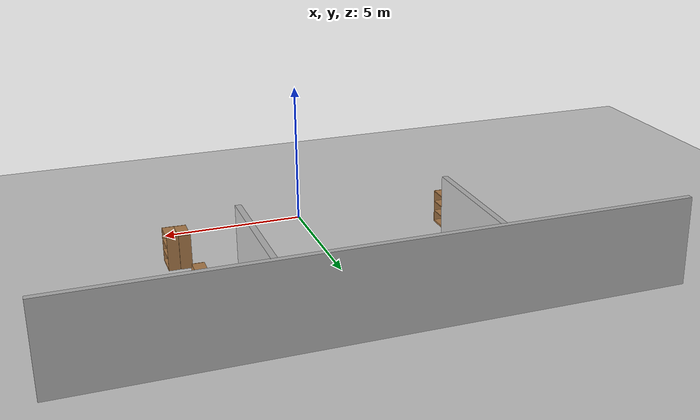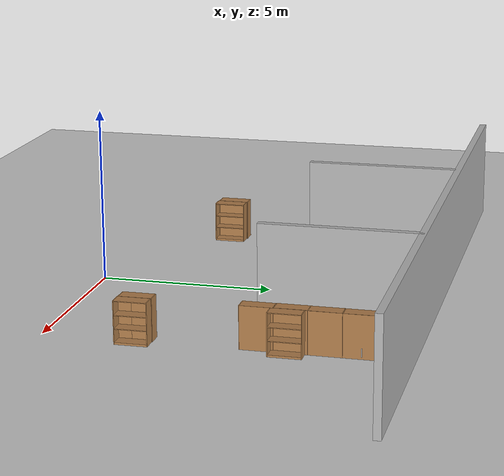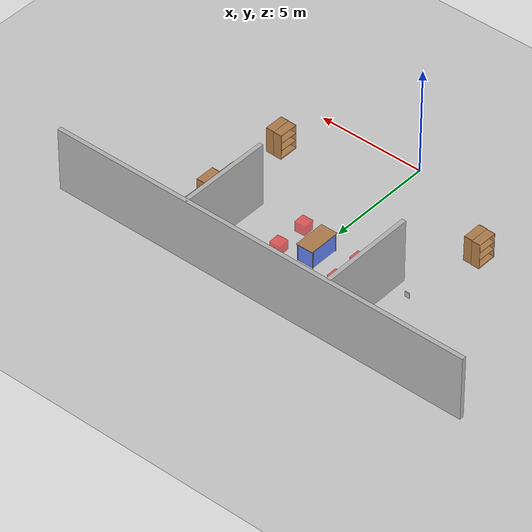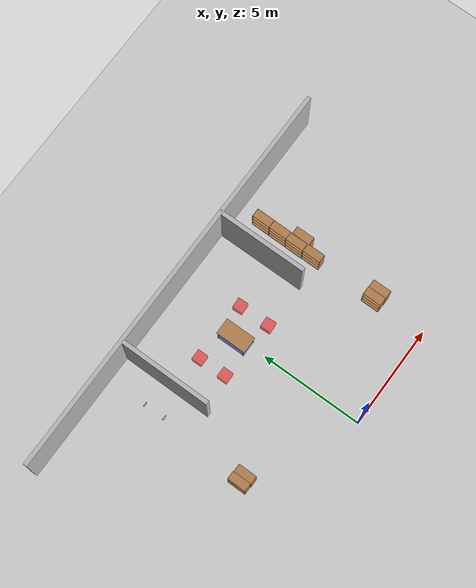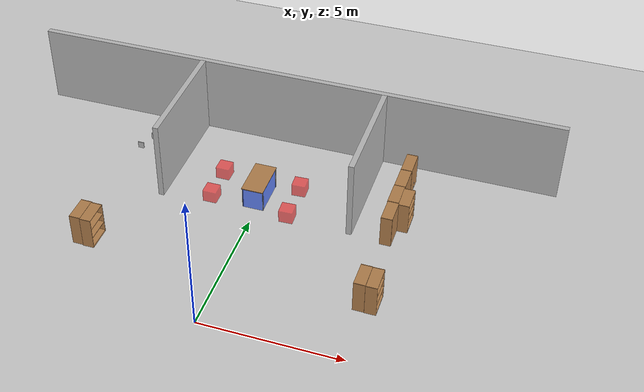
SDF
<sdf version="1.7">
 <world name="library_world">
  <model name="ground_plane">
   <static>1</static>
   <link name="link">
    <collision name="collision">
     <geometry><plane><normal>0 0 1</normal><size>100 100</size></plane></geometry>
     <surface>
      <contact><collide_bitmask>65535</collide_bitmask></contact>
      <friction><ode><mu>100</mu><mu2>50</mu2></ode></friction>
     </surface>
    </collision>
    <visual name="visual">
     <cast_shadows>0</cast_shadows>
     <geometry><plane><normal>0 0 1</normal><size>100 100</size></plane></geometry>
     <material>
      <script><uri>file://media/materials/scripts/gazebo.material</uri><name>Gazebo/Grey</name></script>
     </material>
    </visual>
   </link>
  </model>
  <model name="wall_back">
   <static>1</static>
   <link name="link"><visual name="visual"><geometry><box><size>20 0.2 3</size></box></geometry></visual></link>
   <pose>0 9.89894 1.5 0 -0 0</pose>
  </model>
  <model name="bookshelf_0_clone_8_clone_14">
   <static>1</static>
   <link name="link">
    <inertial><mass>1</mass></inertial>
    <collision name="back">
     <pose>0 0.005 0.6 0 -0 0</pose>
     <geometry><box><size>0.9 0.01 1.2</size></box></geometry>
    </collision>
    <visual name="visual1">
     <pose>0 0.005 0.6 0 -0 0</pose>
     <geometry><box><size>0.9 0.01 1.2</size></box></geometry>
     <material>
      <script><uri>file://media/materials/scripts/gazebo.material</uri><name>Gazebo/Wood</name></script>
     </material>
    </visual>
    <collision name="left_side">
     <pose>0.45 -0.195 0.6 0 -0 0</pose>
     <geometry><box><size>0.02 0.4 1.2</size></box></geometry>
    </collision>
    <visual name="visual2">
     <pose>0.45 -0.195 0.6 0 -0 0</pose>
     <geometry><box><size>0.02 0.4 1.2</size></box></geometry>
     <material>
      <script><uri>file://media/materials/scripts/gazebo.material</uri><name>Gazebo/Wood</name></script>
     </material>
    </visual>
    <collision name="right_side">
     <pose>-0.45 -0.195 0.6 0 -0 0</pose>
     <geometry><box><size>0.02 0.4 1.2</size></box></geometry>
    </collision>
    <visual name="visual3">
     <pose>-0.45 -0.195 0.6 0 -0 0</pose>
     <geometry><box><size>0.02 0.4 1.2</size></box></geometry>
     <material>
      <script><uri>file://media/materials/scripts/gazebo.material</uri><name>Gazebo/Wood</name></script>
     </material>
    </visual>
    <collision name="bottom">
     <pose>0 -0.195 0.03 0 -0 0</pose>
     <geometry><box><size>0.88 0.4 0.06</size></box></geometry>
    </collision>
    <visual name="visual4">
     <pose>0 -0.195 0.03 0 -0 0</pose>
     <geometry><box><size>0.88 0.4 0.06</size></box></geometry>
     <material>
      <script><uri>file://media/materials/scripts/gazebo.material</uri><name>Gazebo/Wood</name></script>
     </material>
    </visual>
    <collision name="top">
     <pose>0 -0.195 1.19 0 -0 0</pose>
     <geometry><box><size>0.88 0.4 0.02</size></box></geometry>
    </collision>
    <visual name="visual5">
     <pose>0 -0.195 1.19 0 -0 0</pose>
     <geometry><box><size>0.88 0.4 0.02</size></box></geometry>
     <material>
      <script><uri>file://media/materials/scripts/gazebo.material</uri><name>Gazebo/Wood</name></script>
     </material>
    </visual>
    <collision name="low_shelf">
     <pose>0 -0.195 0.43 0 -0 0</pose>
     <geometry><box><size>0.88 0.4 0.02</size></box></geometry>
    </collision>
    <visual name="visual6">
     <pose>0 -0.195 0.43 0 -0 0</pose>
     <geometry><box><size>0.88 0.4 0.02</size></box></geometry>
     <material>
      <script><uri>file://media/materials/scripts/gazebo.material</uri><name>Gazebo/Wood</name></script>
     </material>
    </visual>
    <collision name="high_shelf">
     <pose>0 -0.195 0.8 0 -0 0</pose>
     <geometry><box><size>0.88 0.4 0.02</size></box></geometry>
    </collision>
    <visual name="visual7">
     <pose>0 -0.195 0.8 0 -0 0</pose>
     <geometry><box><size>0.88 0.4 0.02</size></box></geometry>
     <material>
      <script><uri>file://media/materials/scripts/gazebo.material</uri><name>Gazebo/Wood</name></script>
     </material>
    </visual>
   </link>
   <pose>5.00395 8.56957 0 0 0 -1.57537</pose>
  </model>
  <model name="bookshelf_0_clone_8_clone_15">
   <static>1</static>
   <link name="link">
    <inertial><mass>1</mass></inertial>
    <collision name="back">
     <pose>0 0.005 0.6 0 -0 0</pose>
     <geometry><box><size>0.9 0.01 1.2</size></box></geometry>
    </collision>
    <visual name="visual1">
     <pose>0 0.005 0.6 0 -0 0</pose>
     <geometry><box><size>0.9 0.01 1.2</size></box></geometry>
     <material>
      <script><uri>file://media/materials/scripts/gazebo.material</uri><name>Gazebo/Wood</name></script>
     </material>
    </visual>
    <collision name="left_side">
     <pose>0.45 -0.195 0.6 0 -0 0</pose>
     <geometry><box><size>0.02 0.4 1.2</size></box></geometry>
    </collision>
    <visual name="visual2">
     <pose>0.45 -0.195 0.6 0 -0 0</pose>
     <geometry><box><size>0.02 0.4 1.2</size></box></geometry>
     <material>
      <script><uri>file://media/materials/scripts/gazebo.material</uri><name>Gazebo/Wood</name></script>
     </material>
    </visual>
    <collision name="right_side">
     <pose>-0.45 -0.195 0.6 0 -0 0</pose>
     <geometry><box><size>0.02 0.4 1.2</size></box></geometry>
    </collision>
    <visual name="visual3">
     <pose>-0.45 -0.195 0.6 0 -0 0</pose>
     <geometry><box><size>0.02 0.4 1.2</size></box></geometry>
     <material>
      <script><uri>file://media/materials/scripts/gazebo.material</uri><name>Gazebo/Wood</name></script>
     </material>
    </visual>
    <collision name="bottom">
     <pose>0 -0.195 0.03 0 -0 0</pose>
     <geometry><box><size>0.88 0.4 0.06</size></box></geometry>
    </collision>
    <visual name="visual4">
     <pose>0 -0.195 0.03 0 -0 0</pose>
     <geometry><box><size>0.88 0.4 0.06</size></box></geometry>
     <material>
      <script><uri>file://media/materials/scripts/gazebo.material</uri><name>Gazebo/Wood</name></script>
     </material>
    </visual>
    <collision name="top">
     <pose>0 -0.195 1.19 0 -0 0</pose>
     <geometry><box><size>0.88 0.4 0.02</size></box></geometry>
    </collision>
    <visual name="visual5">
     <pose>0 -0.195 1.19 0 -0 0</pose>
     <geometry><box><size>0.88 0.4 0.02</size></box></geometry>
     <material>
      <script><uri>file://media/materials/scripts/gazebo.material</uri><name>Gazebo/Wood</name></script>
     </material>
    </visual>
    <collision name="low_shelf">
     <pose>0 -0.195 0.43 0 -0 0</pose>
     <geometry><box><size>0.88 0.4 0.02</size></box></geometry>
    </collision>
    <visual name="visual6">
     <pose>0 -0.195 0.43 0 -0 0</pose>
     <geometry><box><size>0.88 0.4 0.02</size></box></geometry>
     <material>
      <script><uri>file://media/materials/scripts/gazebo.material</uri><name>Gazebo/Wood</name></script>
     </material>
    </visual>
    <collision name="high_shelf">
     <pose>0 -0.195 0.8 0 -0 0</pose>
     <geometry><box><size>0.88 0.4 0.02</size></box></geometry>
    </collision>
    <visual name="visual7">
     <pose>0 -0.195 0.8 0 -0 0</pose>
     <geometry><box><size>0.88 0.4 0.02</size></box></geometry>
     <material>
      <script><uri>file://media/materials/scripts/gazebo.material</uri><name>Gazebo/Wood</name></script>
     </material>
    </visual>
   </link>
   <pose>4.99735 7.65848 0 0 0 -1.57537</pose>
  </model>
  <model name="bookshelf_0_clone_8_clone_16">
   <static>1</static>
   <link name="link">
    <inertial><mass>1</mass></inertial>
    <collision name="back">
     <pose>0 0.005 0.6 0 -0 0</pose>
     <geometry><box><size>0.9 0.01 1.2</size></box></geometry>
    </collision>
    <visual name="visual1">
     <pose>0 0.005 0.6 0 -0 0</pose>
     <geometry><box><size>0.9 0.01 1.2</size></box></geometry>
     <material>
      <script><uri>file://media/materials/scripts/gazebo.material</uri><name>Gazebo/Wood</name></script>
     </material>
    </visual>
    <collision name="left_side">
     <pose>0.45 -0.195 0.6 0 -0 0</pose>
     <geometry><box><size>0.02 0.4 1.2</size></box></geometry>
    </collision>
    <visual name="visual2">
     <pose>0.45 -0.195 0.6 0 -0 0</pose>
     <geometry><box><size>0.02 0.4 1.2</size></box></geometry>
     <material>
      <script><uri>file://media/materials/scripts/gazebo.material</uri><name>Gazebo/Wood</name></script>
     </material>
    </visual>
    <collision name="right_side">
     <pose>-0.45 -0.195 0.6 0 -0 0</pose>
     <geometry><box><size>0.02 0.4 1.2</size></box></geometry>
    </collision>
    <visual name="visual3">
     <pose>-0.45 -0.195 0.6 0 -0 0</pose>
     <geometry><box><size>0.02 0.4 1.2</size></box></geometry>
     <material>
      <script><uri>file://media/materials/scripts/gazebo.material</uri><name>Gazebo/Wood</name></script>
     </material>
    </visual>
    <collision name="bottom">
     <pose>0 -0.195 0.03 0 -0 0</pose>
     <geometry><box><size>0.88 0.4 0.06</size></box></geometry>
    </collision>
    <visual name="visual4">
     <pose>0 -0.195 0.03 0 -0 0</pose>
     <geometry><box><size>0.88 0.4 0.06</size></box></geometry>
     <material>
      <script><uri>file://media/materials/scripts/gazebo.material</uri><name>Gazebo/Wood</name></script>
     </material>
    </visual>
    <collision name="top">
     <pose>0 -0.195 1.19 0 -0 0</pose>
     <geometry><box><size>0.88 0.4 0.02</size></box></geometry>
    </collision>
    <visual name="visual5">
     <pose>0 -0.195 1.19 0 -0 0</pose>
     <geometry><box><size>0.88 0.4 0.02</size></box></geometry>
     <material>
      <script><uri>file://media/materials/scripts/gazebo.material</uri><name>Gazebo/Wood</name></script>
     </material>
    </visual>
    <collision name="low_shelf">
     <pose>0 -0.195 0.43 0 -0 0</pose>
     <geometry><box><size>0.88 0.4 0.02</size></box></geometry>
    </collision>
    <visual name="visual6">
     <pose>0 -0.195 0.43 0 -0 0</pose>
     <geometry><box><size>0.88 0.4 0.02</size></box></geometry>
     <material>
      <script><uri>file://media/materials/scripts/gazebo.material</uri><name>Gazebo/Wood</name></script>
     </material>
    </visual>
    <collision name="high_shelf">
     <pose>0 -0.195 0.8 0 -0 0</pose>
     <geometry><box><size>0.88 0.4 0.02</size></box></geometry>
    </collision>
    <visual name="visual7">
     <pose>0 -0.195 0.8 0 -0 0</pose>
     <geometry><box><size>0.88 0.4 0.02</size></box></geometry>
     <material>
      <script><uri>file://media/materials/scripts/gazebo.material</uri><name>Gazebo/Wood</name></script>
     </material>
    </visual>
   </link>
   <pose>4.98552 6.75734 0 0 0 -1.57537</pose>
  </model>
  <model name="bookshelf_0_clone_8_clone_17">
   <static>1</static>
   <link name="link">
    <inertial><mass>1</mass></inertial>
    <collision name="back">
     <pose>0 0.005 0.6 0 -0 0</pose>
     <geometry><box><size>0.9 0.01 1.2</size></box></geometry>
    </collision>
    <visual name="visual1">
     <pose>0 0.005 0.6 0 -0 0</pose>
     <geometry><box><size>0.9 0.01 1.2</size></box></geometry>
     <material>
      <script><uri>file://media/materials/scripts/gazebo.material</uri><name>Gazebo/Wood</name></script>
     </material>
    </visual>
    <collision name="left_side">
     <pose>0.45 -0.195 0.6 0 -0 0</pose>
     <geometry><box><size>0.02 0.4 1.2</size></box></geometry>
    </collision>
    <visual name="visual2">
     <pose>0.45 -0.195 0.6 0 -0 0</pose>
     <geometry><box><size>0.02 0.4 1.2</size></box></geometry>
     <material>
      <script><uri>file://media/materials/scripts/gazebo.material</uri><name>Gazebo/Wood</name></script>
     </material>
    </visual>
    <collision name="right_side">
     <pose>-0.45 -0.195 0.6 0 -0 0</pose>
     <geometry><box><size>0.02 0.4 1.2</size></box></geometry>
    </collision>
    <visual name="visual3">
     <pose>-0.45 -0.195 0.6 0 -0 0</pose>
     <geometry><box><size>0.02 0.4 1.2</size></box></geometry>
     <material>
      <script><uri>file://media/materials/scripts/gazebo.material</uri><name>Gazebo/Wood</name></script>
     </material>
    </visual>
    <collision name="bottom">
     <pose>0 -0.195 0.03 0 -0 0</pose>
     <geometry><box><size>0.88 0.4 0.06</size></box></geometry>
    </collision>
    <visual name="visual4">
     <pose>0 -0.195 0.03 0 -0 0</pose>
     <geometry><box><size>0.88 0.4 0.06</size></box></geometry>
     <material>
      <script><uri>file://media/materials/scripts/gazebo.material</uri><name>Gazebo/Wood</name></script>
     </material>
    </visual>
    <collision name="top">
     <pose>0 -0.195 1.19 0 -0 0</pose>
     <geometry><box><size>0.88 0.4 0.02</size></box></geometry>
    </collision>
    <visual name="visual5">
     <pose>0 -0.195 1.19 0 -0 0</pose>
     <geometry><box><size>0.88 0.4 0.02</size></box></geometry>
     <material>
      <script><uri>file://media/materials/scripts/gazebo.material</uri><name>Gazebo/Wood</name></script>
     </material>
    </visual>
    <collision name="low_shelf">
     <pose>0 -0.195 0.43 0 -0 0</pose>
     <geometry><box><size>0.88 0.4 0.02</size></box></geometry>
    </collision>
    <visual name="visual6">
     <pose>0 -0.195 0.43 0 -0 0</pose>
     <geometry><box><size>0.88 0.4 0.02</size></box></geometry>
     <material>
      <script><uri>file://media/materials/scripts/gazebo.material</uri><name>Gazebo/Wood</name></script>
     </material>
    </visual>
    <collision name="high_shelf">
     <pose>0 -0.195 0.8 0 -0 0</pose>
     <geometry><box><size>0.88 0.4 0.02</size></box></geometry>
    </collision>
    <visual name="visual7">
     <pose>0 -0.195 0.8 0 -0 0</pose>
     <geometry><box><size>0.88 0.4 0.02</size></box></geometry>
     <material>
      <script><uri>file://media/materials/scripts/gazebo.material</uri><name>Gazebo/Wood</name></script>
     </material>
    </visual>
   </link>
   <pose>4.99636 5.84577 0 0 0 -1.57537</pose>
  </model>
  <model name="bookshelf_0_clone_2_clone_11">
   <static>1</static>
   <link name="link">
    <inertial><mass>1</mass></inertial>
    <collision name="back">
     <pose>0 0.005 0.6 0 -0 0</pose>
     <geometry><box><size>0.9 0.01 1.2</size></box></geometry>
    </collision>
    <visual name="visual1">
     <pose>0 0.005 0.6 0 -0 0</pose>
     <geometry><box><size>0.9 0.01 1.2</size></box></geometry>
     <material>
      <script><uri>file://media/materials/scripts/gazebo.material</uri><name>Gazebo/Wood</name></script>
     </material>
    </visual>
    <collision name="left_side">
     <pose>0.45 -0.195 0.6 0 -0 0</pose>
     <geometry><box><size>0.02 0.4 1.2</size></box></geometry>
    </collision>
    <visual name="visual2">
     <pose>0.45 -0.195 0.6 0 -0 0</pose>
     <geometry><box><size>0.02 0.4 1.2</size></box></geometry>
     <material>
      <script><uri>file://media/materials/scripts/gazebo.material</uri><name>Gazebo/Wood</name></script>
     </material>
    </visual>
    <collision name="right_side">
     <pose>-0.45 -0.195 0.6 0 -0 0</pose>
     <geometry><box><size>0.02 0.4 1.2</size></box></geometry>
    </collision>
    <visual name="visual3">
     <pose>-0.45 -0.195 0.6 0 -0 0</pose>
     <geometry><box><size>0.02 0.4 1.2</size></box></geometry>
     <material>
      <script><uri>file://media/materials/scripts/gazebo.material</uri><name>Gazebo/Wood</name></script>
     </material>
    </visual>
    <collision name="bottom">
     <pose>0 -0.195 0.03 0 -0 0</pose>
     <geometry><box><size>0.88 0.4 0.06</size></box></geometry>
    </collision>
    <visual name="visual4">
     <pose>0 -0.195 0.03 0 -0 0</pose>
     <geometry><box><size>0.88 0.4 0.06</size></box></geometry>
     <material>
      <script><uri>file://media/materials/scripts/gazebo.material</uri><name>Gazebo/Wood</name></script>
     </material>
    </visual>
    <collision name="top">
     <pose>0 -0.195 1.19 0 -0 0</pose>
     <geometry><box><size>0.88 0.4 0.02</size></box></geometry>
    </collision>
    <visual name="visual5">
     <pose>0 -0.195 1.19 0 -0 0</pose>
     <geometry><box><size>0.88 0.4 0.02</size></box></geometry>
     <material>
      <script><uri>file://media/materials/scripts/gazebo.material</uri><name>Gazebo/Wood</name></script>
     </material>
    </visual>
    <collision name="low_shelf">
     <pose>0 -0.195 0.43 0 -0 0</pose>
     <geometry><box><size>0.88 0.4 0.02</size></box></geometry>
    </collision>
    <visual name="visual6">
     <pose>0 -0.195 0.43 0 -0 0</pose>
     <geometry><box><size>0.88 0.4 0.02</size></box></geometry>
     <material>
      <script><uri>file://media/materials/scripts/gazebo.material</uri><name>Gazebo/Wood</name></script>
     </material>
    </visual>
    <collision name="high_shelf">
     <pose>0 -0.195 0.8 0 -0 0</pose>
     <geometry><box><size>0.88 0.4 0.02</size></box></geometry>
    </collision>
    <visual name="visual7">
     <pose>0 -0.195 0.8 0 -0 0</pose>
     <geometry><box><size>0.88 0.4 0.02</size></box></geometry>
     <material>
      <script><uri>file://media/materials/scripts/gazebo.material</uri><name>Gazebo/Wood</name></script>
     </material>
    </visual>
   </link>
   <pose>4.98632 6.6777 0 0 -0 1.57381</pose>
  </model>
  <model name="bookshelf_0_clone_2_clone_24">
   <static>1</static>
   <link name="link">
    <inertial><mass>1</mass></inertial>
    <collision name="back">
     <pose>0 0.005 0.6 0 -0 0</pose>
     <geometry><box><size>0.9 0.01 1.2</size></box></geometry>
    </collision>
    <visual name="visual1">
     <pose>0 0.005 0.6 0 -0 0</pose>
     <geometry><box><size>0.9 0.01 1.2</size></box></geometry>
     <material>
      <script><uri>file://media/materials/scripts/gazebo.material</uri><name>Gazebo/Wood</name></script>
     </material>
    </visual>
    <collision name="left_side">
     <pose>0.45 -0.195 0.6 0 -0 0</pose>
     <geometry><box><size>0.02 0.4 1.2</size></box></geometry>
    </collision>
    <visual name="visual2">
     <pose>0.45 -0.195 0.6 0 -0 0</pose>
     <geometry><box><size>0.02 0.4 1.2</size></box></geometry>
     <material>
      <script><uri>file://media/materials/scripts/gazebo.material</uri><name>Gazebo/Wood</name></script>
     </material>
    </visual>
    <collision name="right_side">
     <pose>-0.45 -0.195 0.6 0 -0 0</pose>
     <geometry><box><size>0.02 0.4 1.2</size></box></geometry>
    </collision>
    <visual name="visual3">
     <pose>-0.45 -0.195 0.6 0 -0 0</pose>
     <geometry><box><size>0.02 0.4 1.2</size></box></geometry>
     <material>
      <script><uri>file://media/materials/scripts/gazebo.material</uri><name>Gazebo/Wood</name></script>
     </material>
    </visual>
    <collision name="bottom">
     <pose>0 -0.195 0.03 0 -0 0</pose>
     <geometry><box><size>0.88 0.4 0.06</size></box></geometry>
    </collision>
    <visual name="visual4">
     <pose>0 -0.195 0.03 0 -0 0</pose>
     <geometry><box><size>0.88 0.4 0.06</size></box></geometry>
     <material>
      <script><uri>file://media/materials/scripts/gazebo.material</uri><name>Gazebo/Wood</name></script>
     </material>
    </visual>
    <collision name="top">
     <pose>0 -0.195 1.19 0 -0 0</pose>
     <geometry><box><size>0.88 0.4 0.02</size></box></geometry>
    </collision>
    <visual name="visual5">
     <pose>0 -0.195 1.19 0 -0 0</pose>
     <geometry><box><size>0.88 0.4 0.02</size></box></geometry>
     <material>
      <script><uri>file://media/materials/scripts/gazebo.material</uri><name>Gazebo/Wood</name></script>
     </material>
    </visual>
    <collision name="low_shelf">
     <pose>0 -0.195 0.43 0 -0 0</pose>
     <geometry><box><size>0.88 0.4 0.02</size></box></geometry>
    </collision>
    <visual name="visual6">
     <pose>0 -0.195 0.43 0 -0 0</pose>
     <geometry><box><size>0.88 0.4 0.02</size></box></geometry>
     <material>
      <script><uri>file://media/materials/scripts/gazebo.material</uri><name>Gazebo/Wood</name></script>
     </material>
    </visual>
    <collision name="high_shelf">
     <pose>0 -0.195 0.8 0 -0 0</pose>
     <geometry><box><size>0.88 0.4 0.02</size></box></geometry>
    </collision>
    <visual name="visual7">
     <pose>0 -0.195 0.8 0 -0 0</pose>
     <geometry><box><size>0.88 0.4 0.02</size></box></geometry>
     <material>
      <script><uri>file://media/materials/scripts/gazebo.material</uri><name>Gazebo/Wood</name></script>
     </material>
    </visual>
   </link>
   <pose>-4.98388 2.56453 0 0 -0 1.57381</pose>
  </model>
  <model name="bookshelf_0_clone_2_clone_29">
   <static>1</static>
   <link name="link">
    <inertial><mass>1</mass></inertial>
    <collision name="back">
     <pose>0 0.005 0.6 0 -0 0</pose>
     <geometry><box><size>0.9 0.01 1.2</size></box></geometry>
    </collision>
    <visual name="visual1">
     <pose>0 0.005 0.6 0 -0 0</pose>
     <geometry><box><size>0.9 0.01 1.2</size></box></geometry>
     <material>
      <script><uri>file://media/materials/scripts/gazebo.material</uri><name>Gazebo/Wood</name></script>
     </material>
    </visual>
    <collision name="left_side">
     <pose>0.45 -0.195 0.6 0 -0 0</pose>
     <geometry><box><size>0.02 0.4 1.2</size></box></geometry>
    </collision>
    <visual name="visual2">
     <pose>0.45 -0.195 0.6 0 -0 0</pose>
     <geometry><box><size>0.02 0.4 1.2</size></box></geometry>
     <material>
      <script><uri>file://media/materials/scripts/gazebo.material</uri><name>Gazebo/Wood</name></script>
     </material>
    </visual>
    <collision name="right_side">
     <pose>-0.45 -0.195 0.6 0 -0 0</pose>
     <geometry><box><size>0.02 0.4 1.2</size></box></geometry>
    </collision>
    <visual name="visual3">
     <pose>-0.45 -0.195 0.6 0 -0 0</pose>
     <geometry><box><size>0.02 0.4 1.2</size></box></geometry>
     <material>
      <script><uri>file://media/materials/scripts/gazebo.material</uri><name>Gazebo/Wood</name></script>
     </material>
    </visual>
    <collision name="bottom">
     <pose>0 -0.195 0.03 0 -0 0</pose>
     <geometry><box><size>0.88 0.4 0.06</size></box></geometry>
    </collision>
    <visual name="visual4">
     <pose>0 -0.195 0.03 0 -0 0</pose>
     <geometry><box><size>0.88 0.4 0.06</size></box></geometry>
     <material>
      <script><uri>file://media/materials/scripts/gazebo.material</uri><name>Gazebo/Wood</name></script>
     </material>
    </visual>
    <collision name="top">
     <pose>0 -0.195 1.19 0 -0 0</pose>
     <geometry><box><size>0.88 0.4 0.02</size></box></geometry>
    </collision>
    <visual name="visual5">
     <pose>0 -0.195 1.19 0 -0 0</pose>
     <geometry><box><size>0.88 0.4 0.02</size></box></geometry>
     <material>
      <script><uri>file://media/materials/scripts/gazebo.material</uri><name>Gazebo/Wood</name></script>
     </material>
    </visual>
    <collision name="low_shelf">
     <pose>0 -0.195 0.43 0 -0 0</pose>
     <geometry><box><size>0.88 0.4 0.02</size></box></geometry>
    </collision>
    <visual name="visual6">
     <pose>0 -0.195 0.43 0 -0 0</pose>
     <geometry><box><size>0.88 0.4 0.02</size></box></geometry>
     <material>
      <script><uri>file://media/materials/scripts/gazebo.material</uri><name>Gazebo/Wood</name></script>
     </material>
    </visual>
    <collision name="high_shelf">
     <pose>0 -0.195 0.8 0 -0 0</pose>
     <geometry><box><size>0.88 0.4 0.02</size></box></geometry>
    </collision>
    <visual name="visual7">
     <pose>0 -0.195 0.8 0 -0 0</pose>
     <geometry><box><size>0.88 0.4 0.02</size></box></geometry>
     <material>
      <script><uri>file://media/materials/scripts/gazebo.material</uri><name>Gazebo/Wood</name></script>
     </material>
    </visual>
   </link>
   <pose>4.98298 2.57261 0 0 -0 1.57381</pose>
  </model>
  <model name="bookshelf_0_clone_8_clone_17_clone_5">
   <static>1</static>
   <link name="link">
    <inertial><mass>1</mass></inertial>
    <collision name="back">
     <pose>0 0.005 0.6 0 -0 0</pose>
     <geometry><box><size>0.9 0.01 1.2</size></box></geometry>
    </collision>
    <visual name="visual1">
     <pose>0 0.005 0.6 0 -0 0</pose>
     <geometry><box><size>0.9 0.01 1.2</size></box></geometry>
     <material>
      <script><uri>file://media/materials/scripts/gazebo.material</uri><name>Gazebo/Wood</name></script>
     </material>
    </visual>
    <collision name="left_side">
     <pose>0.45 -0.195 0.6 0 -0 0</pose>
     <geometry><box><size>0.02 0.4 1.2</size></box></geometry>
    </collision>
    <visual name="visual2">
     <pose>0.45 -0.195 0.6 0 -0 0</pose>
     <geometry><box><size>0.02 0.4 1.2</size></box></geometry>
     <material>
      <script><uri>file://media/materials/scripts/gazebo.material</uri><name>Gazebo/Wood</name></script>
     </material>
    </visual>
    <collision name="right_side">
     <pose>-0.45 -0.195 0.6 0 -0 0</pose>
     <geometry><box><size>0.02 0.4 1.2</size></box></geometry>
    </collision>
    <visual name="visual3">
     <pose>-0.45 -0.195 0.6 0 -0 0</pose>
     <geometry><box><size>0.02 0.4 1.2</size></box></geometry>
     <material>
      <script><uri>file://media/materials/scripts/gazebo.material</uri><name>Gazebo/Wood</name></script>
     </material>
    </visual>
    <collision name="bottom">
     <pose>0 -0.195 0.03 0 -0 0</pose>
     <geometry><box><size>0.88 0.4 0.06</size></box></geometry>
    </collision>
    <visual name="visual4">
     <pose>0 -0.195 0.03 0 -0 0</pose>
     <geometry><box><size>0.88 0.4 0.06</size></box></geometry>
     <material>
      <script><uri>file://media/materials/scripts/gazebo.material</uri><name>Gazebo/Wood</name></script>
     </material>
    </visual>
    <collision name="top">
     <pose>0 -0.195 1.19 0 -0 0</pose>
     <geometry><box><size>0.88 0.4 0.02</size></box></geometry>
    </collision>
    <visual name="visual5">
     <pose>0 -0.195 1.19 0 -0 0</pose>
     <geometry><box><size>0.88 0.4 0.02</size></box></geometry>
     <material>
      <script><uri>file://media/materials/scripts/gazebo.material</uri><name>Gazebo/Wood</name></script>
     </material>
    </visual>
    <collision name="low_shelf">
     <pose>0 -0.195 0.43 0 -0 0</pose>
     <geometry><box><size>0.88 0.4 0.02</size></box></geometry>
    </collision>
    <visual name="visual6">
     <pose>0 -0.195 0.43 0 -0 0</pose>
     <geometry><box><size>0.88 0.4 0.02</size></box></geometry>
     <material>
      <script><uri>file://media/materials/scripts/gazebo.material</uri><name>Gazebo/Wood</name></script>
     </material>
    </visual>
    <collision name="high_shelf">
     <pose>0 -0.195 0.8 0 -0 0</pose>
     <geometry><box><size>0.88 0.4 0.02</size></box></geometry>
    </collision>
    <visual name="visual7">
     <pose>0 -0.195 0.8 0 -0 0</pose>
     <geometry><box><size>0.88 0.4 0.02</size></box></geometry>
     <material>
      <script><uri>file://media/materials/scripts/gazebo.material</uri><name>Gazebo/Wood</name></script>
     </material>
    </visual>
   </link>
   <pose>4.97366 2.58573 0 0 0 -1.57537</pose>
  </model>
  <model name="bookshelf_0_clone_8_clone_17_clone_10">
   <static>1</static>
   <link name="link">
    <inertial><mass>1</mass></inertial>
    <collision name="back">
     <pose>0 0.005 0.6 0 -0 0</pose>
     <geometry><box><size>0.9 0.01 1.2</size></box></geometry>
    </collision>
    <visual name="visual1">
     <pose>0 0.005 0.6 0 -0 0</pose>
     <geometry><box><size>0.9 0.01 1.2</size></box></geometry>
     <material>
      <script><uri>file://media/materials/scripts/gazebo.material</uri><name>Gazebo/Wood</name></script>
     </material>
    </visual>
    <collision name="left_side">
     <pose>0.45 -0.195 0.6 0 -0 0</pose>
     <geometry><box><size>0.02 0.4 1.2</size></box></geometry>
    </collision>
    <visual name="visual2">
     <pose>0.45 -0.195 0.6 0 -0 0</pose>
     <geometry><box><size>0.02 0.4 1.2</size></box></geometry>
     <material>
      <script><uri>file://media/materials/scripts/gazebo.material</uri><name>Gazebo/Wood</name></script>
     </material>
    </visual>
    <collision name="right_side">
     <pose>-0.45 -0.195 0.6 0 -0 0</pose>
     <geometry><box><size>0.02 0.4 1.2</size></box></geometry>
    </collision>
    <visual name="visual3">
     <pose>-0.45 -0.195 0.6 0 -0 0</pose>
     <geometry><box><size>0.02 0.4 1.2</size></box></geometry>
     <material>
      <script><uri>file://media/materials/scripts/gazebo.material</uri><name>Gazebo/Wood</name></script>
     </material>
    </visual>
    <collision name="bottom">
     <pose>0 -0.195 0.03 0 -0 0</pose>
     <geometry><box><size>0.88 0.4 0.06</size></box></geometry>
    </collision>
    <visual name="visual4">
     <pose>0 -0.195 0.03 0 -0 0</pose>
     <geometry><box><size>0.88 0.4 0.06</size></box></geometry>
     <material>
      <script><uri>file://media/materials/scripts/gazebo.material</uri><name>Gazebo/Wood</name></script>
     </material>
    </visual>
    <collision name="top">
     <pose>0 -0.195 1.19 0 -0 0</pose>
     <geometry><box><size>0.88 0.4 0.02</size></box></geometry>
    </collision>
    <visual name="visual5">
     <pose>0 -0.195 1.19 0 -0 0</pose>
     <geometry><box><size>0.88 0.4 0.02</size></box></geometry>
     <material>
      <script><uri>file://media/materials/scripts/gazebo.material</uri><name>Gazebo/Wood</name></script>
     </material>
    </visual>
    <collision name="low_shelf">
     <pose>0 -0.195 0.43 0 -0 0</pose>
     <geometry><box><size>0.88 0.4 0.02</size></box></geometry>
    </collision>
    <visual name="visual6">
     <pose>0 -0.195 0.43 0 -0 0</pose>
     <geometry><box><size>0.88 0.4 0.02</size></box></geometry>
     <material>
      <script><uri>file://media/materials/scripts/gazebo.material</uri><name>Gazebo/Wood</name></script>
     </material>
    </visual>
    <collision name="high_shelf">
     <pose>0 -0.195 0.8 0 -0 0</pose>
     <geometry><box><size>0.88 0.4 0.02</size></box></geometry>
    </collision>
    <visual name="visual7">
     <pose>0 -0.195 0.8 0 -0 0</pose>
     <geometry><box><size>0.88 0.4 0.02</size></box></geometry>
     <material>
      <script><uri>file://media/materials/scripts/gazebo.material</uri><name>Gazebo/Wood</name></script>
     </material>
    </visual>
   </link>
   <pose>-4.9867 2.59177 0 0 0 -1.57537</pose>
  </model>
  <model name="book_2_clone_clone_0">
   <static>1</static>
   <link name="link">
    <visual name="visual"><geometry><box><size>0.221094 0.032318 0.244099</size></box></geometry></visual>
   </link>
   <pose>-4.83963 7.8488 0.562007 0 -0 0</pose>
  </model>
  <model name="book_2_clone_clone_1_clone_clone_1">
   <static>1</static>
   <link name="link">
    <visual name="visual"><geometry><box><size>0.221094 0.032318 0.244099</size></box></geometry></visual>
   </link>
   <pose>4.90631 8.61649 0.179005 0 -0 0</pose>
  </model>
  <model name="book_2_clone_clone_2">
   <static>1</static>
   <link name="link">
    <visual name="visual"><geometry><box><size>0.221094 0.032318 0.244099</size></box></geometry></visual>
   </link>
   <pose>-4.8632 6.78201 0.934382 0 -0 0</pose>
  </model>
  <model name="book_2_clone_clone_3">
   <static>1</static>
   <link name="link">
    <visual name="visual"><geometry><box><size>0.221094 0.032318 0.244099</size></box></geometry></visual>
   </link>
   <pose>4.85551 5.91633 0.934382 0 -0 0</pose>
  </model>
  <model name="table">
   <static>1</static>
   <link name="link">
    <collision name="surface">
     <pose>0 0 1 0 -0 0</pose>
     <geometry><box><size>1.5 0.8 0.03</size></box></geometry>
     <surface><friction><ode><mu>0.6</mu><mu2>0.6</mu2></ode></friction></surface>
    </collision>
    <visual name="visual1">
     <pose>0 0 1 0 -0 0</pose>
     <geometry><box><size>1.5 0.8 0.03</size></box></geometry>
     <material>
      <script><uri>file://media/materials/scripts/gazebo.material</uri><name>Gazebo/Wood</name></script>
     </material>
    </visual>
    <collision name="front_left_leg">
     <pose>0.68 0.38 0.5 0 -0 0</pose>
     <geometry><cylinder><radius>0.02</radius><length>1</length></cylinder></geometry>
    </collision>
    <visual name="front_left_leg">
     <pose>0.68 0.38 0.5 0 -0 0</pose>
     <geometry><cylinder><radius>0.02</radius><length>1</length></cylinder></geometry>
     <material>
      <script><uri>file://media/materials/scripts/gazebo.material</uri><name>Gazebo/Grey</name></script>
     </material>
    </visual>
    <collision name="front_right_leg">
     <pose>0.68 -0.38 0.5 0 -0 0</pose>
     <geometry><cylinder><radius>0.02</radius><length>1</length></cylinder></geometry>
    </collision>
    <visual name="front_right_leg">
     <pose>0.68 -0.38 0.5 0 -0 0</pose>
     <geometry><cylinder><radius>0.02</radius><length>1</length></cylinder></geometry>
     <material>
      <script><uri>file://media/materials/scripts/gazebo.material</uri><name>Gazebo/Grey</name></script>
     </material>
    </visual>
    <collision name="back_right_leg">
     <pose>-0.68 -0.38 0.5 0 -0 0</pose>
     <geometry><cylinder><radius>0.02</radius><length>1</length></cylinder></geometry>
    </collision>
    <visual name="back_right_leg">
     <pose>-0.68 -0.38 0.5 0 -0 0</pose>
     <geometry><cylinder><radius>0.02</radius><length>1</length></cylinder></geometry>
     <material>
      <script><uri>file://media/materials/scripts/gazebo.material</uri><name>Gazebo/Grey</name></script>
     </material>
    </visual>
    <collision name="back_left_leg">
     <pose>-0.68 0.38 0.5 0 -0 0</pose>
     <geometry><cylinder><radius>0.02</radius><length>1</length></cylinder></geometry>
    </collision>
    <visual name="back_left_leg">
     <pose>-0.68 0.38 0.5 0 -0 0</pose>
     <geometry><cylinder><radius>0.02</radius><length>1</length></cylinder></geometry>
     <material>
      <script><uri>file://media/materials/scripts/gazebo.material</uri><name>Gazebo/Grey</name></script>
     </material>
    </visual>
   </link>
   <pose>-0.146321 6.46286 -0.174161 -0.000869 2e-06 -1.56857</pose>
  </model>
  <model name="wall_left_clone_clone_clone_1">
   <static>1</static>
   <link name="link">
    <visual name="visual"><geometry><box><size>0.2 4.41332 3</size></box></geometry></visual>
   </link>
   <pose>-3.52847 7.61812 1.5 0 -0 0</pose>
  </model>
  <model name="wall_left_clone_clone_clone_1_clone">
   <static>1</static>
   <link name="link">
    <visual name="visual"><geometry><box><size>0.2 4.41332 3</size></box></geometry></visual>
   </link>
   <pose>3.46602 7.7294 1.5 0 -0 0</pose>
  </model>
  <model name="nav_visible_block_Chair_clone_14_clone_22">
   <static>1</static>
   <pose>1.15942 7.16927 0.199182 0 0 -3.09777</pose>
   <link name="link">
    <collision name="collision">
     <geometry><box><size>0.5 0.5 0.5</size></box></geometry>
     <surface>
      <contact><collide_bitmask>65535</collide_bitmask></contact>
      <friction><ode><mu>1</mu><mu2>1</mu2></ode></friction>
     </surface>
    </collision>
    <visual name="visual">
     <transparency>0.35</transparency>
     <geometry><box><size>0.5 0.5 0.5</size></box></geometry>
     <material><ambient>1 0.15 0.15 1</ambient><diffuse>1 0.15 0.15 1</diffuse></material>
    </visual>
   </link>
  </model>
  <model name="nav_visible_block_Chair_clone_14_clone_23">
   <static>1</static>
   <pose>1.18095 5.66476 0.211986 0 0 -3.09777</pose>
   <link name="link">
    <collision name="collision">
     <geometry><box><size>0.5 0.5 0.5</size></box></geometry>
     <surface>
      <contact><collide_bitmask>65535</collide_bitmask></contact>
      <friction><ode><mu>1</mu><mu2>1</mu2></ode></friction>
     </surface>
    </collision>
    <visual name="visual">
     <transparency>0.35</transparency>
     <geometry><box><size>0.5 0.5 0.5</size></box></geometry>
     <material><ambient>1 0.15 0.15 1</ambient><diffuse>1 0.15 0.15 1</diffuse></material>
    </visual>
   </link>
  </model>
  <model name="nav_visible_block_Chair_clone_0_clone_3">
   <static>1</static>
   <pose>-1.74364 5.86388 0.183394 0 -0 0</pose>
   <link name="link">
    <collision name="collision">
     <geometry><box><size>0.5 0.5 0.499999</size></box></geometry>
     <surface>
      <contact><collide_bitmask>65535</collide_bitmask></contact>
      <friction><ode><mu>1</mu><mu2>1</mu2></ode></friction>
     </surface>
    </collision>
    <visual name="visual">
     <transparency>0.35</transparency>
     <geometry><box><size>0.5 0.5 0.499999</size></box></geometry>
     <material><ambient>1 0.15 0.15 1</ambient><diffuse>1 0.15 0.15 1</diffuse></material>
    </visual>
   </link>
  </model>
  <model name="nav_visible_block_Chair_clone_0_clone_4">
   <static>1</static>
   <pose>-1.76686 7.21628 0.195489 0 -0 0</pose>
   <link name="link">
    <collision name="collision">
     <geometry><box><size>0.5 0.5 0.500001</size></box></geometry>
     <surface>
      <contact><collide_bitmask>65535</collide_bitmask></contact>
      <friction><ode><mu>1</mu><mu2>1</mu2></ode></friction>
     </surface>
    </collision>
    <visual name="visual">
     <transparency>0.35</transparency>
     <geometry><box><size>0.5 0.5 0.500001</size></box></geometry>
     <material><ambient>1 0.15 0.15 1</ambient><diffuse>1 0.15 0.15 1</diffuse></material>
    </visual>
   </link>
  </model>
  <model name="nav_visible_block_table_clone_3_clone_3">
   <static>1</static>
   <pose>-0.142363 6.44933 0.25 0 0 -1.56857</pose>
   <link name="link">
    <collision name="collision">
     <geometry><box><size>1.36858 0.75 1.11496</size></box></geometry>
     <surface>
      <contact><collide_bitmask>65535</collide_bitmask></contact>
      <friction><ode><mu>1</mu><mu2>1</mu2></ode></friction>
     </surface>
    </collision>
    <visual name="visual">
     <transparency>0.35</transparency>
     <geometry><box><size>1.36858 0.75 1.11496</size></box></geometry>
     <material><ambient>0.1 0.3 1 1</ambient><diffuse>0.1 0.3 1 1</diffuse></material>
    </visual>
   </link>
  </model>
 </world>
</sdf>
